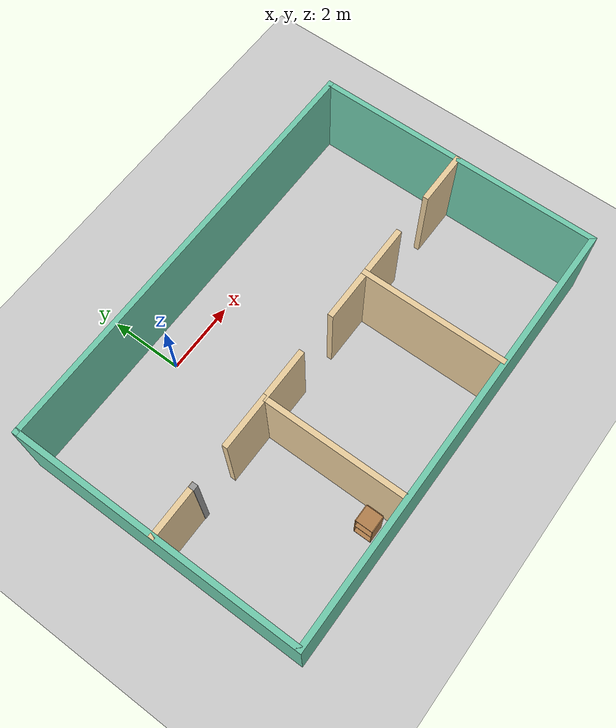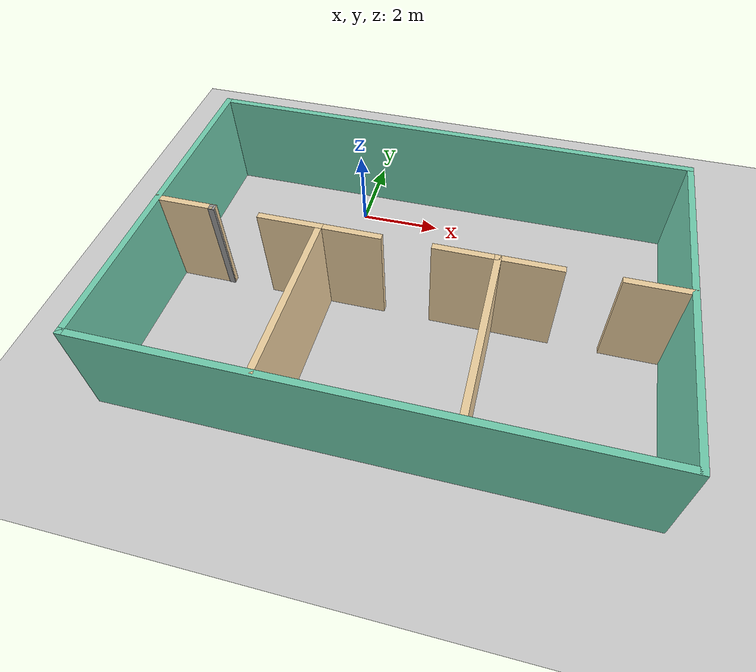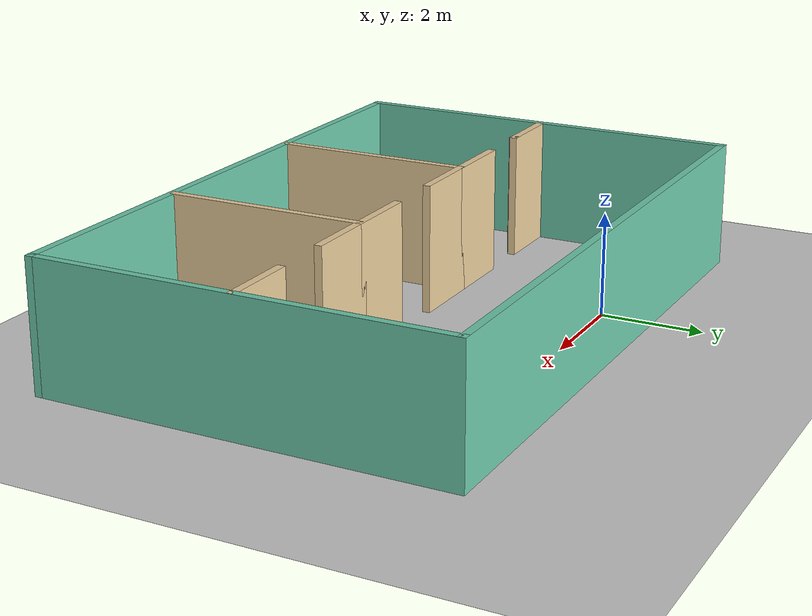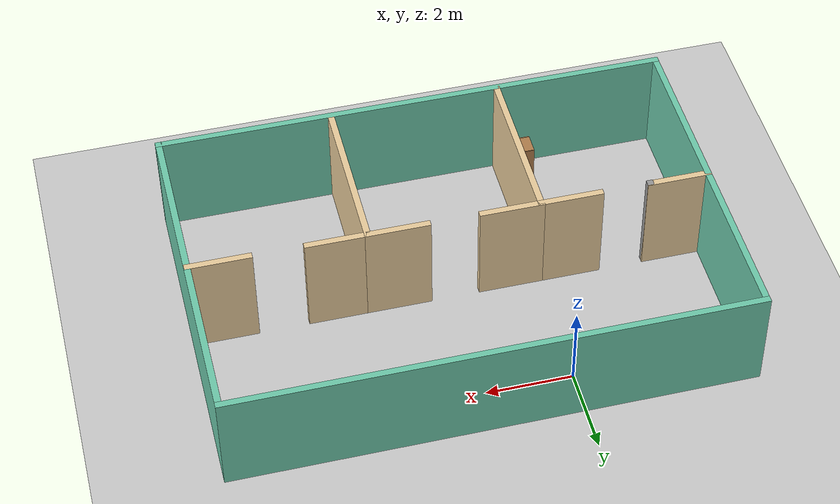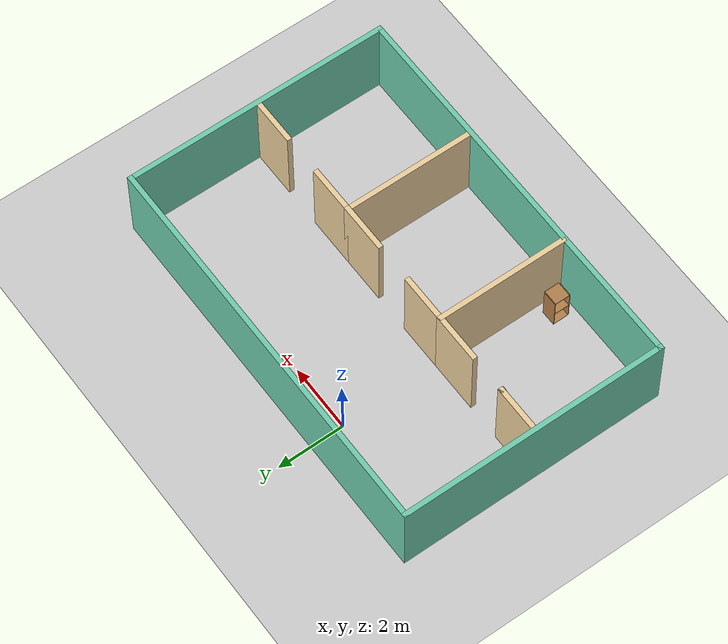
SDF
<sdf version="1.6">
 <world name="default">
  <model name="ground_plane">
   <static>1</static>
   <link name="link">
    <collision name="collision">
     <geometry><plane><normal>0 0 1</normal><size>100 100</size></plane></geometry>
     <surface><friction><ode><mu>100</mu><mu2>50</mu2></ode></friction></surface>
    </collision>
    <visual name="visual">
     <cast_shadows>0</cast_shadows>
     <geometry><plane><normal>0 0 1</normal><size>100 100</size></plane></geometry>
     <material>
      <script><uri>file://media/materials/scripts/gazebo.material</uri><name>Gazebo/Grey</name></script>
     </material>
    </visual>
   </link>
  </model>
  <model name="RobotOffice">
   <pose>1.99675 -2.98962 0 0 -0 0</pose>
   <link name="Wall_17">
    <collision name="Wall_17_Collision">
     <geometry><box><size>12.0004 0.15 2.5</size></box></geometry>
     <pose>0 0 1.25 0 -0 0</pose>
    </collision>
    <visual name="Wall_17_Visual">
     <pose>0 0 1.25 0 -0 0</pose>
     <geometry><box><size>12.0004 0.15 2.5</size></box></geometry>
     <material>
      <script><uri>file://media/materials/scripts/gazebo.material</uri><name>Gazebo/Grey</name></script>
      <ambient>0.435294 0.796078 0.67451 1</ambient>
     </material>
     <meta><layer>0</layer></meta>
    </visual>
    <pose>-2e-06 3.925 0 0 0 -3.14159</pose>
   </link>
   <link name="Wall_19">
    <collision name="Wall_19_Collision">
     <geometry><box><size>8 0.15 2.5</size></box></geometry>
     <pose>0 0 1.25 0 -0 0</pose>
    </collision>
    <visual name="Wall_19_Visual">
     <pose>0 0 1.25 0 -0 0</pose>
     <geometry><box><size>8 0.15 2.5</size></box></geometry>
     <material>
      <script><uri>file://media/materials/scripts/gazebo.material</uri><name>Gazebo/Grey</name></script>
      <ambient>0.435294 0.796078 0.67451 1</ambient>
     </material>
     <meta><layer>0</layer></meta>
    </visual>
    <pose>-5.92522 -3.8e-05 0 0 0 -1.5708</pose>
   </link>
   <link name="Wall_20">
    <collision name="Wall_20_Collision">
     <geometry><box><size>12 0.15 2.5</size></box></geometry>
     <pose>0 0 1.25 0 -0 0</pose>
    </collision>
    <visual name="Wall_20_Visual">
     <pose>0 0 1.25 0 -0 0</pose>
     <geometry><box><size>12 0.15 2.5</size></box></geometry>
     <material>
      <script><uri>file://media/materials/scripts/gazebo.material</uri><name>Gazebo/Grey</name></script>
      <ambient>0.435294 0.796078 0.67451 1</ambient>
     </material>
     <meta><layer>0</layer></meta>
    </visual>
    <pose>-0.000217 -3.92504 0 0 -0 0</pose>
   </link>
   <link name="Wall_21">
    <collision name="Wall_21_Collision">
     <geometry><box><size>8 0.15 2.5</size></box></geometry>
     <pose>0 0 1.25 0 -0 0</pose>
    </collision>
    <visual name="Wall_21_Visual">
     <pose>0 0 1.25 0 -0 0</pose>
     <geometry><box><size>8 0.15 2.5</size></box></geometry>
     <material>
      <script><uri>file://media/materials/scripts/gazebo.material</uri><name>Gazebo/Grey</name></script>
      <ambient>0.435294 0.796078 0.67451 1</ambient>
     </material>
     <meta><layer>0</layer></meta>
    </visual>
    <pose>5.925 0 0 0 -0 1.57074</pose>
   </link>
   <link name="Wall_27">
    <collision name="Wall_27_Collision">
     <geometry><box><size>1.5 0.15 2.5</size></box></geometry>
     <pose>0 0 1.25 0 -0 0</pose>
    </collision>
    <visual name="Wall_27_Visual">
     <pose>0 0 1.25 0 -0 0</pose>
     <geometry><box><size>1.5 0.15 2.5</size></box></geometry>
     <material>
      <script><uri>file://media/materials/scripts/gazebo.material</uri><name>Gazebo/Grey</name></script>
      <ambient>0.921569 0.807843 0.615686 1</ambient>
     </material>
     <meta><layer>0</layer></meta>
    </visual>
    <pose>-5.24522 -0.018038 0 0 -0 0</pose>
   </link>
   <link name="Wall_29">
    <collision name="Wall_29_Collision">
     <geometry><box><size>1.51521 0.15 2.5</size></box></geometry>
     <pose>0 0 1.25 0 -0 0</pose>
    </collision>
    <visual name="Wall_29_Visual">
     <pose>0 0 1.25 0 -0 0</pose>
     <geometry><box><size>1.51521 0.15 2.5</size></box></geometry>
     <material>
      <script><uri>file://media/materials/scripts/gazebo.material</uri><name>Gazebo/Grey</name></script>
      <ambient>0.921569 0.807843 0.615686 1</ambient>
     </material>
     <meta><layer>0</layer></meta>
    </visual>
    <pose>-2.71606 -0.018038 0 0 -0 0</pose>
   </link>
   <link name="Wall_31">
    <collision name="Wall_31_Collision">
     <geometry><box><size>0.15 0.15 2.5</size></box></geometry>
     <pose>0 0 1.25 0 -0 0</pose>
    </collision>
    <visual name="Wall_31_Visual">
     <pose>0 0 1.25 0 -0 0</pose>
     <geometry><box><size>0.15 0.15 2.5</size></box></geometry>
     <material>
      <script><uri>file://media/materials/scripts/gazebo.material</uri><name>Gazebo/Grey</name></script>
      <ambient>1 1 1 1</ambient>
     </material>
     <meta><layer>0</layer></meta>
    </visual>
    <pose>-4.57022 -0.029538 0 0 -0 0</pose>
   </link>
   <link name="Wall_34">
    <collision name="Wall_34_Collision">
     <geometry><box><size>4 0.15 2.5</size></box></geometry>
     <pose>0 0 1.25 0 -0 0</pose>
    </collision>
    <visual name="Wall_34_Visual">
     <pose>0 0 1.25 0 -0 0</pose>
     <geometry><box><size>4 0.15 2.5</size></box></geometry>
     <material>
      <script><uri>file://media/materials/scripts/gazebo.material</uri><name>Gazebo/Grey</name></script>
      <ambient>0.921569 0.807843 0.615686 1</ambient>
     </material>
     <meta><layer>0</layer></meta>
    </visual>
    <pose>-2.03322 -1.94304 0 0 0 -1.5708</pose>
   </link>
   <link name="Wall_36">
    <collision name="Wall_36_Collision">
     <geometry><box><size>1.5 0.15 2.5</size></box></geometry>
     <pose>0 0 1.25 0 -0 0</pose>
    </collision>
    <visual name="Wall_36_Visual">
     <pose>0 0 1.25 0 -0 0</pose>
     <geometry><box><size>1.5 0.15 2.5</size></box></geometry>
     <material>
      <script><uri>file://media/materials/scripts/gazebo.material</uri><name>Gazebo/Grey</name></script>
      <ambient>0.921569 0.807843 0.615686 1</ambient>
     </material>
     <meta><layer>0</layer></meta>
    </visual>
    <pose>-1.35845 -0.018038 0 0 -0 0</pose>
   </link>
   <link name="Wall_43">
    <collision name="Wall_43_Collision">
     <geometry><box><size>1.5 0.15 2.5</size></box></geometry>
     <pose>0 0 1.25 0 -0 0</pose>
    </collision>
    <visual name="Wall_43_Visual">
     <pose>0 0 1.25 0 -0 0</pose>
     <geometry><box><size>1.5 0.15 2.5</size></box></geometry>
     <material>
      <script><uri>file://media/materials/scripts/gazebo.material</uri><name>Gazebo/Grey</name></script>
      <ambient>0.921569 0.807843 0.615686 1</ambient>
     </material>
     <meta><layer>0</layer></meta>
    </visual>
    <pose>5.23878 -0.018038 0 0 -0 0</pose>
   </link>
   <link name="Wall_45">
    <collision name="Wall_45_Collision">
     <geometry><box><size>4 0.15 2.5</size></box></geometry>
     <pose>0 0 1.25 0 -0 0</pose>
    </collision>
    <visual name="Wall_45_Visual">
     <pose>0 0 1.25 0 -0 0</pose>
     <geometry><box><size>4 0.15 2.5</size></box></geometry>
     <material>
      <script><uri>file://media/materials/scripts/gazebo.material</uri><name>Gazebo/Grey</name></script>
      <ambient>0.921569 0.807843 0.615686 1</ambient>
     </material>
     <meta><layer>0</layer></meta>
    </visual>
    <pose>1.92178 -1.94304 0 0 0 -1.5708</pose>
   </link>
   <link name="Wall_47">
    <collision name="Wall_47_Collision">
     <geometry><box><size>1.5 0.15 2.5</size></box></geometry>
     <pose>0 0 1.25 0 -0 0</pose>
    </collision>
    <visual name="Wall_47_Visual">
     <pose>0 0 1.25 0 -0 0</pose>
     <geometry><box><size>1.5 0.15 2.5</size></box></geometry>
     <material>
      <script><uri>file://media/materials/scripts/gazebo.material</uri><name>Gazebo/Grey</name></script>
      <ambient>0.921569 0.807843 0.615686 1</ambient>
     </material>
     <meta><layer>0</layer></meta>
    </visual>
    <pose>1.24678 -0.018038 0 0 -0 0</pose>
   </link>
   <link name="Wall_51">
    <collision name="Wall_51_Collision">
     <geometry><box><size>1.5 0.15 2.5</size></box></geometry>
     <pose>0 0 1.25 0 -0 0</pose>
    </collision>
    <visual name="Wall_51_Visual">
     <pose>0 0 1.25 0 -0 0</pose>
     <geometry><box><size>1.5 0.15 2.5</size></box></geometry>
     <material>
      <script><uri>file://media/materials/scripts/gazebo.material</uri><name>Gazebo/Grey</name></script>
      <ambient>0.921569 0.807843 0.615686 1</ambient>
     </material>
     <meta><layer>0</layer></meta>
    </visual>
    <pose>2.59678 -0.018038 0 0 -0 0</pose>
   </link>
   <static>1</static>
  </model>
  <model name="cabinet_0">
   <static>1</static>
   <link name="cabinet_bottom_plate">
    <inertial>
     <pose>0 0 -1 0 -0 0</pose>
     <inertia><ixx>2.05</ixx><ixy>0</ixy><ixz>0</ixz><iyy>2.05</iyy><iyz>0</iyz><izz>2.05</izz></inertia>
     <mass>25</mass>
    </inertial>
    <collision name="cabinet_bottom_plate_geom">
     <pose>0 0 0.01 0 -0 0</pose>
     <geometry><box><size>0.45 0.45 0.02</size></box></geometry>
    </collision>
    <visual name="cabinet_bottom_plate_geom_visual">
     <pose>0 0 0.01 0 -0 0</pose>
     <geometry><box><size>0.45 0.45 0.02</size></box></geometry>
     <material>
      <script><uri>file://media/materials/scripts/gazebo.material</uri><name>Gazebo/Wood</name></script>
     </material>
    </visual>
    <collision name="cabinet_bottom_plate_geom_cabinet_back_plate">
     <pose>0.235 0 0.51 0 -0 0</pose>
     <geometry><box><size>0.02 0.45 1.02</size></box></geometry>
    </collision>
    <visual name="cabinet_bottom_plate_geom_cabinet_back_plate_visual">
     <pose>0.235 0 0.51 0 -0 0</pose>
     <geometry><box><size>0.02 0.45 1.02</size></box></geometry>
     <material>
      <script><uri>file://media/materials/scripts/gazebo.material</uri><name>Gazebo/Wood</name></script>
     </material>
    </visual>
    <collision name="cabinet_bottom_plate_geom_cabinet_left_plate">
     <pose>0 0.235 0.51 0 -0 0</pose>
     <geometry><box><size>0.45 0.02 1.02</size></box></geometry>
    </collision>
    <visual name="cabinet_bottom_plate_geom_cabinet_left_plate_visual">
     <pose>0 0.235 0.51 0 -0 0</pose>
     <geometry><box><size>0.45 0.02 1.02</size></box></geometry>
     <material>
      <script><uri>file://media/materials/scripts/gazebo.material</uri><name>Gazebo/Wood</name></script>
     </material>
    </visual>
    <collision name="cabinet_bottom_plate_geom_cabinet_middle_plate">
     <pose>0 0 0.51 0 -0 0</pose>
     <geometry><box><size>0.45 0.45 0.02</size></box></geometry>
    </collision>
    <visual name="cabinet_bottom_plate_geom_cabinet_middle_plate_visual">
     <pose>0 0 0.51 0 -0 0</pose>
     <geometry><box><size>0.45 0.45 0.02</size></box></geometry>
     <material>
      <script><uri>file://media/materials/scripts/gazebo.material</uri><name>Gazebo/Wood</name></script>
     </material>
    </visual>
    <collision name="cabinet_bottom_plate_geom_cabinet_right_plate">
     <pose>0 -0.235 0.51 0 -0 0</pose>
     <geometry><box><size>0.45 0.02 1.02</size></box></geometry>
    </collision>
    <visual name="cabinet_bottom_plate_geom_cabinet_right_plate_visual">
     <pose>0 -0.235 0.51 0 -0 0</pose>
     <geometry><box><size>0.45 0.02 1.02</size></box></geometry>
     <material>
      <script><uri>file://media/materials/scripts/gazebo.material</uri><name>Gazebo/Wood</name></script>
     </material>
    </visual>
    <collision name="cabinet_bottom_plate_geom_cabinet_top_plate">
     <pose>0 0 1.01 0 -0 0</pose>
     <geometry><box><size>0.45 0.45 0.02</size></box></geometry>
    </collision>
    <visual name="cabinet_bottom_plate_geom_cabinet_top_plate_visual">
     <pose>0 0 1.01 0 -0 0</pose>
     <geometry><box><size>0.45 0.45 0.02</size></box></geometry>
     <material>
      <script><uri>file://media/materials/scripts/gazebo.material</uri><name>Gazebo/Wood</name></script>
     </material>
    </visual>
   </link>
   <pose>-0.558481 -6.35168 0 0 -0 0</pose>
  </model>
 </world>
</sdf>
